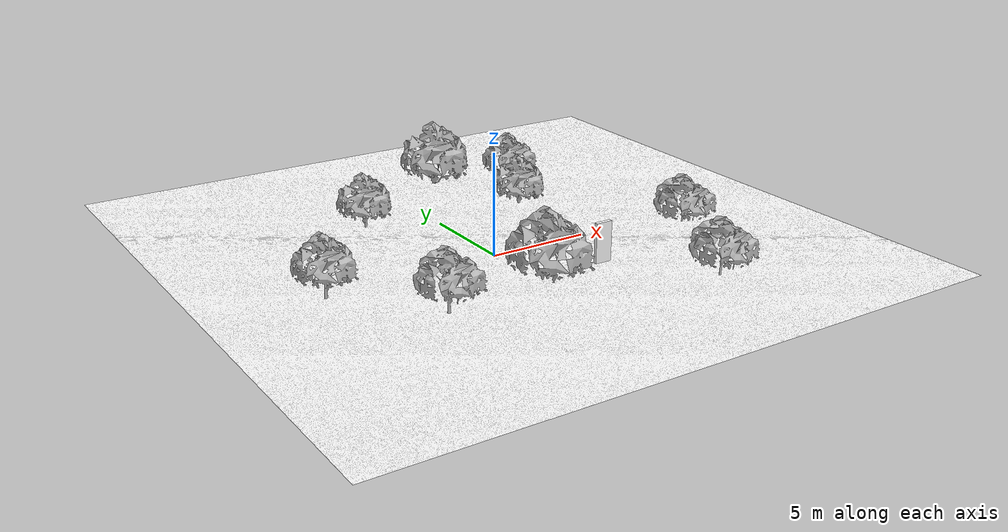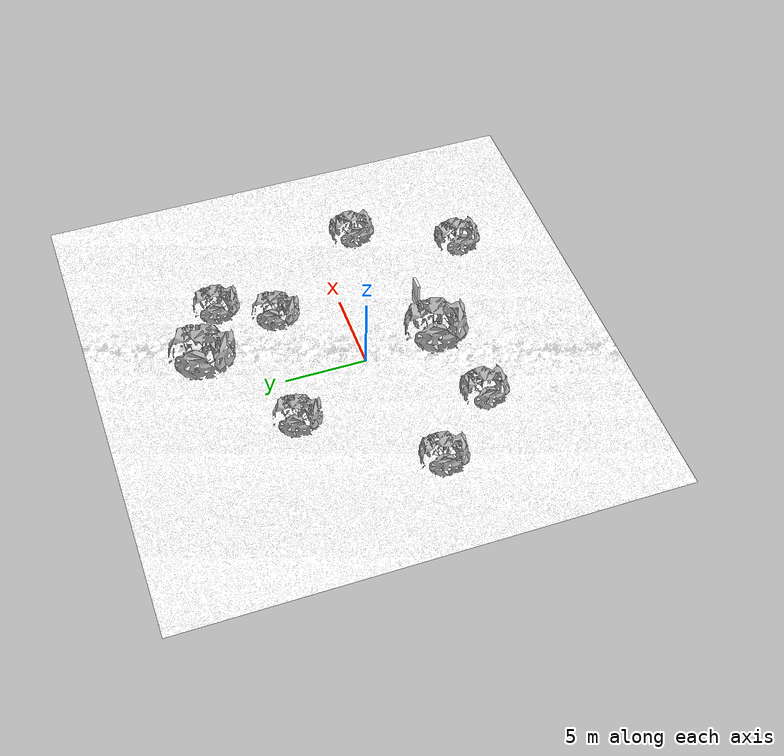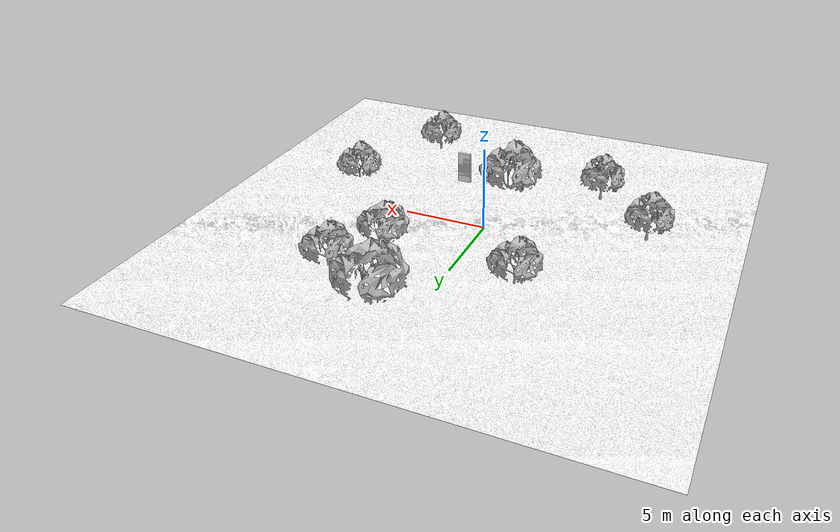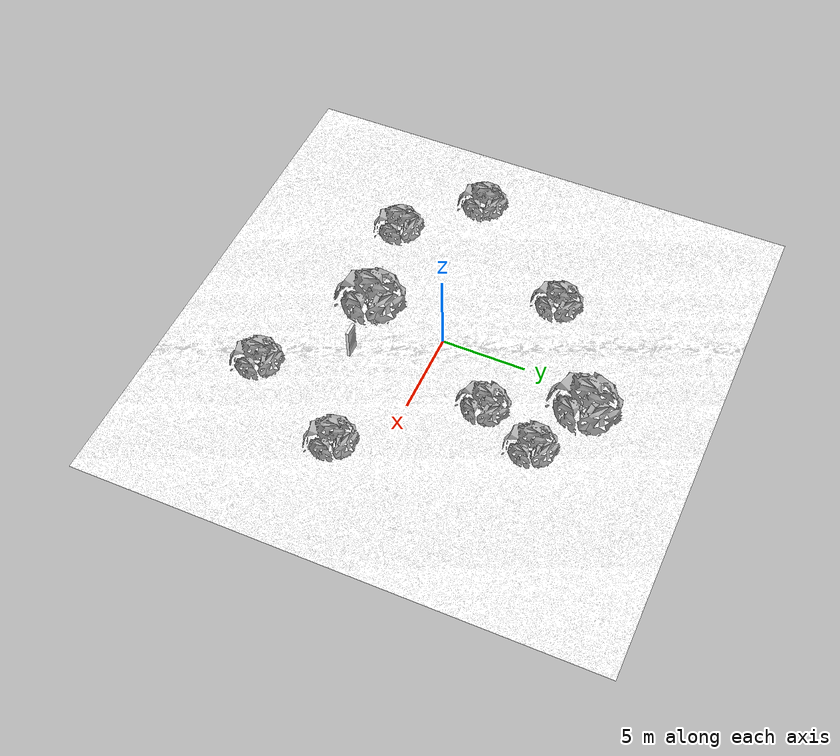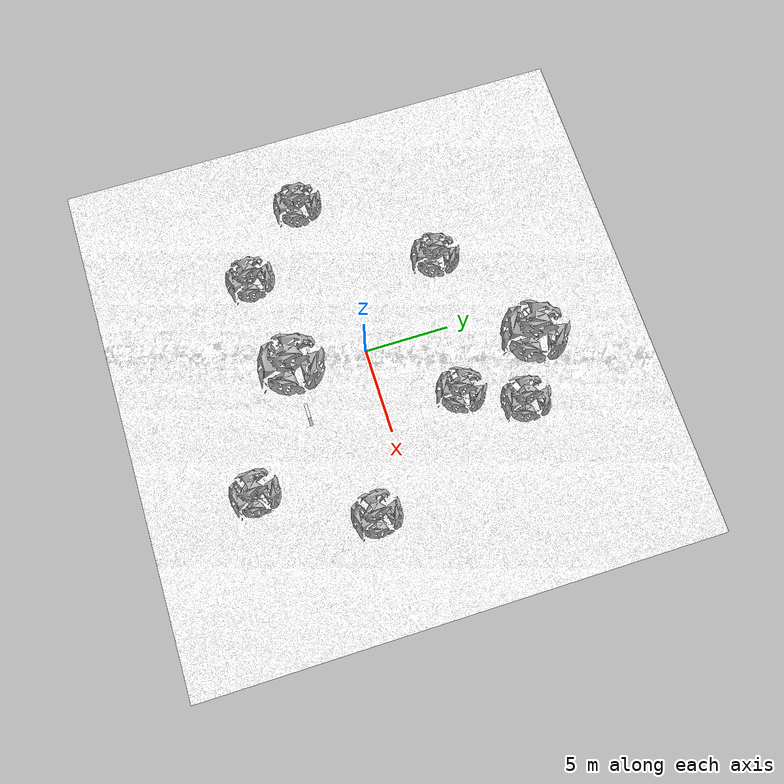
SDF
<sdf version="1.7">
 <world name="default">
  <scene><ambient>0.5 0.5 0.5 1</ambient><background>0.5 0.5 0.5 1</background><shadows>0</shadows></scene>
  <physics type="ode">
   <ode>
    <solver>
     <type>quick</type>
     <iters>10</iters>
     <sor>1.3</sor>
     <use_dynamic_moi_rescaling>0</use_dynamic_moi_rescaling>
    </solver>
    <constraints>
     <cfm>0</cfm>
     <erp>0.2</erp>
     <contact_max_correcting_vel>10</contact_max_correcting_vel>
     <contact_surface_layer>0.001</contact_surface_layer>
    </constraints>
   </ode>
   <max_step_size>0.001</max_step_size>
   <real_time_factor>1</real_time_factor>
   <real_time_update_rate>1000</real_time_update_rate>
  </physics>
  <light name="directional_light_1" type="directional">
   <pose>0 20 20 0.1 0.1 0</pose>
   <diffuse>1 1 1 1</diffuse>
   <specular>1 1 1 1</specular>
   <attenuation><range>300</range></attenuation>
   <direction>0.1 0.1 -1</direction>
   <cast_shadows>0</cast_shadows>
   <spot><inner_angle>0</inner_angle><outer_angle>0</outer_angle><falloff>0</falloff></spot>
  </light>
  <model name="landscape">
   <link name="scenario2_link">
    <collision name="scenario2_collision">
     <geometry><mesh><uri>model://scenario2/meshes/scenario2.dae</uri><scale>1 1 0.005</scale></mesh></geometry>
    </collision>
    <visual name="scenario2_visual">
     <geometry><mesh><uri>model://scenario2/meshes/scenario2.dae</uri><scale>1 1 0.005</scale></mesh></geometry>
     <cast_shadows>0</cast_shadows>
    </visual>
   </link>
   <static>1</static>
   <pose>-14.4767 -14.5008 0.5 0 -0 0</pose>
  </model>
  <model name="tree1">
   <static>1</static>
   <link name="OliveTree1_link">
    <collision name="OliveTree1_collision">
     <geometry><mesh><uri>model://OliveTree1/meshes/OliveTree1.dae</uri><scale>1 1 1</scale></mesh></geometry>
    </collision>
    <visual name="OliveTree1_visual">
     <geometry><mesh><uri>model://OliveTree1/meshes/OliveTree1.dae</uri><scale>1 1 1</scale></mesh></geometry>
     <cast_shadows>0</cast_shadows>
    </visual>
   </link>
   <pose>3 3 0.1 0 -0 0</pose>
  </model>
  <model name="tree2">
   <static>1</static>
   <link name="OliveTree1_link">
    <collision name="OliveTree1_collision">
     <geometry><mesh><uri>model://OliveTree1/meshes/OliveTree1.dae</uri><scale>1 1 1</scale></mesh></geometry>
    </collision>
    <visual name="OliveTree1_visual">
     <geometry><mesh><uri>model://OliveTree1/meshes/OliveTree1.dae</uri><scale>1 1 1</scale></mesh></geometry>
     <cast_shadows>0</cast_shadows>
    </visual>
   </link>
   <pose>5 6 0.2 0 -0 0.3</pose>
  </model>
  <model name="tree3">
   <static>1</static>
   <link name="OliveTree2_link">
    <collision name="OliveTree2_collision">
     <geometry><mesh><uri>model://OliveTree2/meshes/OliveTree2.dae</uri><scale>1 1 1</scale></mesh></geometry>
    </collision>
    <visual name="OliveTree2_visual">
     <geometry><mesh><uri>model://OliveTree2/meshes/OliveTree2.dae</uri><scale>1 1 1</scale></mesh></geometry>
     <cast_shadows>0</cast_shadows>
    </visual>
   </link>
   <pose>1 8 0.4 0 -0 0</pose>
  </model>
  <model name="tree4">
   <static>1</static>
   <link name="OliveTree1_link">
    <collision name="OliveTree1_collision">
     <geometry><mesh><uri>model://OliveTree1/meshes/OliveTree1.dae</uri><scale>1 1 1</scale></mesh></geometry>
    </collision>
    <visual name="OliveTree1_visual">
     <geometry><mesh><uri>model://OliveTree1/meshes/OliveTree1.dae</uri><scale>1 1 1</scale></mesh></geometry>
     <cast_shadows>0</cast_shadows>
    </visual>
   </link>
   <pose>-5 4 0.3 0 -0 0.1</pose>
  </model>
  <model name="tree5">
   <static>1</static>
   <link name="OliveTree1_link">
    <collision name="OliveTree1_collision">
     <geometry><mesh><uri>model://OliveTree1/meshes/OliveTree1.dae</uri><scale>1 1 1</scale></mesh></geometry>
    </collision>
    <visual name="OliveTree1_visual">
     <geometry><mesh><uri>model://OliveTree1/meshes/OliveTree1.dae</uri><scale>1 1 1</scale></mesh></geometry>
     <cast_shadows>0</cast_shadows>
    </visual>
   </link>
   <pose>-10 -3 0.6 0 -0 0.3</pose>
  </model>
  <model name="tree6">
   <static>1</static>
   <link name="OliveTree1_link">
    <collision name="OliveTree1_collision">
     <geometry><mesh><uri>model://OliveTree1/meshes/OliveTree1.dae</uri><scale>1 1 1</scale></mesh></geometry>
    </collision>
    <visual name="OliveTree1_visual">
     <geometry><mesh><uri>model://OliveTree1/meshes/OliveTree1.dae</uri><scale>1 1 1</scale></mesh></geometry>
     <cast_shadows>0</cast_shadows>
    </visual>
   </link>
   <pose>-6 -7 0.52 0 -0 0.5</pose>
  </model>
  <model name="tree7">
   <static>1</static>
   <link name="OliveTree2_link">
    <collision name="OliveTree2_collision">
     <geometry><mesh><uri>model://OliveTree2/meshes/OliveTree2.dae</uri><scale>1 1 1</scale></mesh></geometry>
    </collision>
    <visual name="OliveTree2_visual">
     <geometry><mesh><uri>model://OliveTree2/meshes/OliveTree2.dae</uri><scale>1 1 1</scale></mesh></geometry>
     <cast_shadows>0</cast_shadows>
    </visual>
   </link>
   <pose>-1 -6 0.3 0 -0 0.2</pose>
  </model>
  <model name="tree8">
   <static>1</static>
   <link name="OliveTree1_link">
    <collision name="OliveTree1_collision">
     <geometry><mesh><uri>model://OliveTree1/meshes/OliveTree1.dae</uri><scale>1 1 1</scale></mesh></geometry>
    </collision>
    <visual name="OliveTree1_visual">
     <geometry><mesh><uri>model://OliveTree1/meshes/OliveTree1.dae</uri><scale>1 1 1</scale></mesh></geometry>
     <cast_shadows>0</cast_shadows>
    </visual>
   </link>
   <pose>9 -4 0 0 -0 0.5</pose>
  </model>
  <model name="tree9">
   <static>1</static>
   <link name="OliveTree1_link">
    <collision name="OliveTree1_collision">
     <geometry><mesh><uri>model://OliveTree1/meshes/OliveTree1.dae</uri><scale>1 1 1</scale></mesh></geometry>
    </collision>
    <visual name="OliveTree1_visual">
     <geometry><mesh><uri>model://OliveTree1/meshes/OliveTree1.dae</uri><scale>1 1 1</scale></mesh></geometry>
     <cast_shadows>0</cast_shadows>
    </visual>
   </link>
   <pose>6 -10 0.3 0 -0 0.5</pose>
  </model>
  <model name="qr_wall">
   <pose>3.44162 -4.33896 0.506607 0 -0 1.57</pose>
   <static>1</static>
   <link name="body">
    <inertial>
     <mass>1</mass>
     <inertia>
      <ixx>0.166667</ixx>
      <ixy>0</ixy>
      <ixz>0</ixz>
      <iyy>0.166667</iyy>
      <iyz>0</iyz>
      <izz>0.166667</izz>
     </inertia>
    </inertial>
    <collision name="collision"><geometry><box><size>1 1 1</size></box></geometry></collision>
    <visual name="visual"><geometry><mesh><uri>model://qr_wall/meshes/qr_wall.dae</uri></mesh></geometry></visual>
   </link>
  </model>
  <model name="qr_wall">
   <pose>3.44162 -4.33896 0.506607 0 -0 1.57</pose>
   <static>1</static>
   <link name="body">
    <inertial>
     <mass>1</mass>
     <inertia>
      <ixx>0.166667</ixx>
      <ixy>0</ixy>
      <ixz>0</ixz>
      <iyy>0.166667</iyy>
      <iyz>0</iyz>
      <izz>0.166667</izz>
     </inertia>
    </inertial>
    <collision name="collision"><geometry><box><size>1 1 1</size></box></geometry></collision>
    <visual name="visual"><geometry><mesh><uri>model://qr_wall/meshes/qr_wall.dae</uri></mesh></geometry></visual>
   </link>
  </model>
  <gravity>0 0 -9.81</gravity>
  <magnetic_field>6e-06 2.3e-05 -4.2e-05</magnetic_field>
  <atmosphere type="adiabatic"/>
  <spherical_coordinates>
   <surface_model>EARTH_WGS84</surface_model>
   <latitude_deg>0</latitude_deg>
   <longitude_deg>0</longitude_deg>
   <elevation>0</elevation>
   <heading_deg>0</heading_deg>
  </spherical_coordinates>
 </world>
</sdf>
